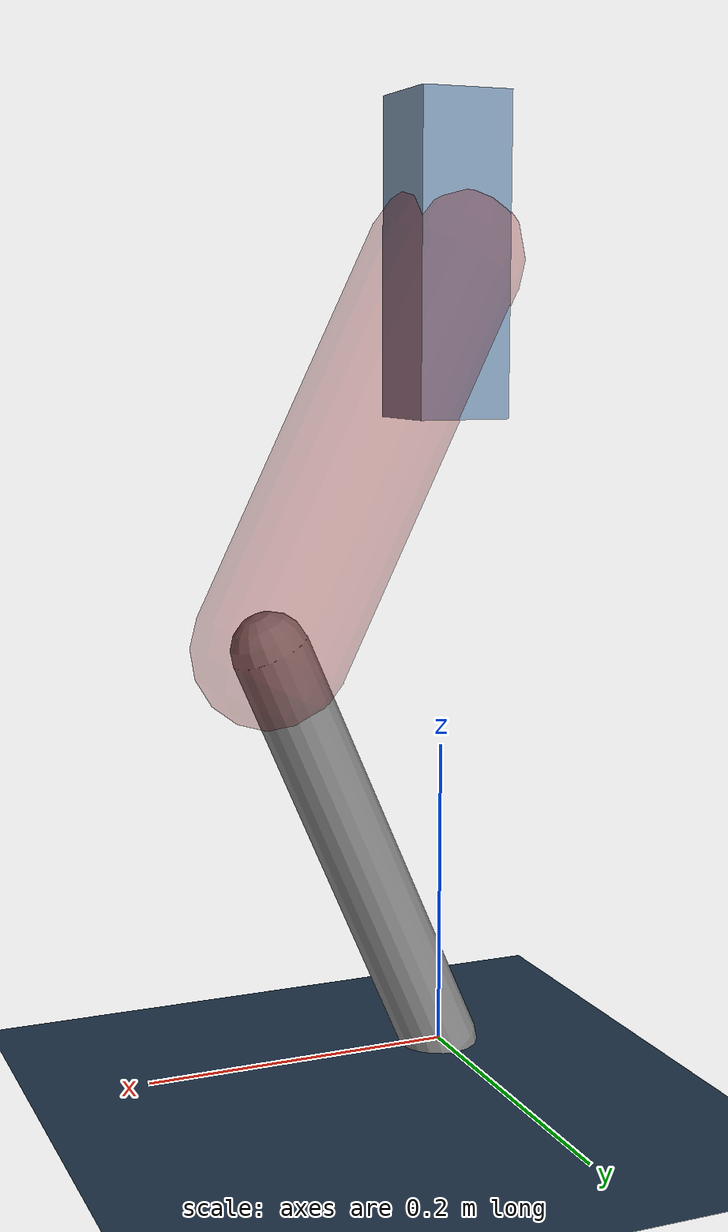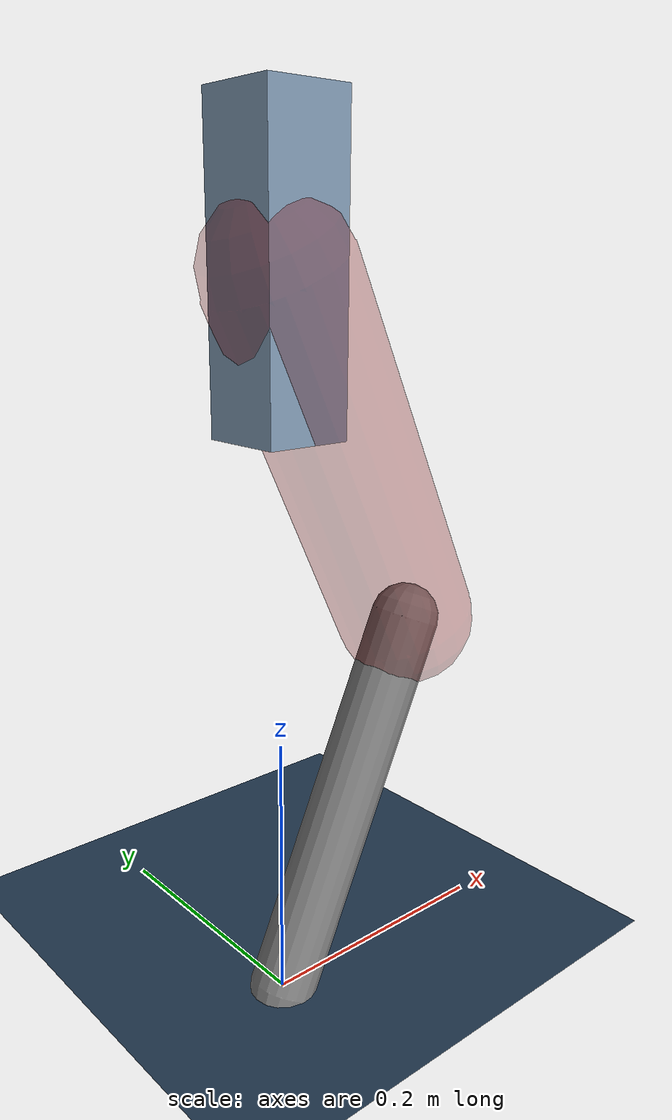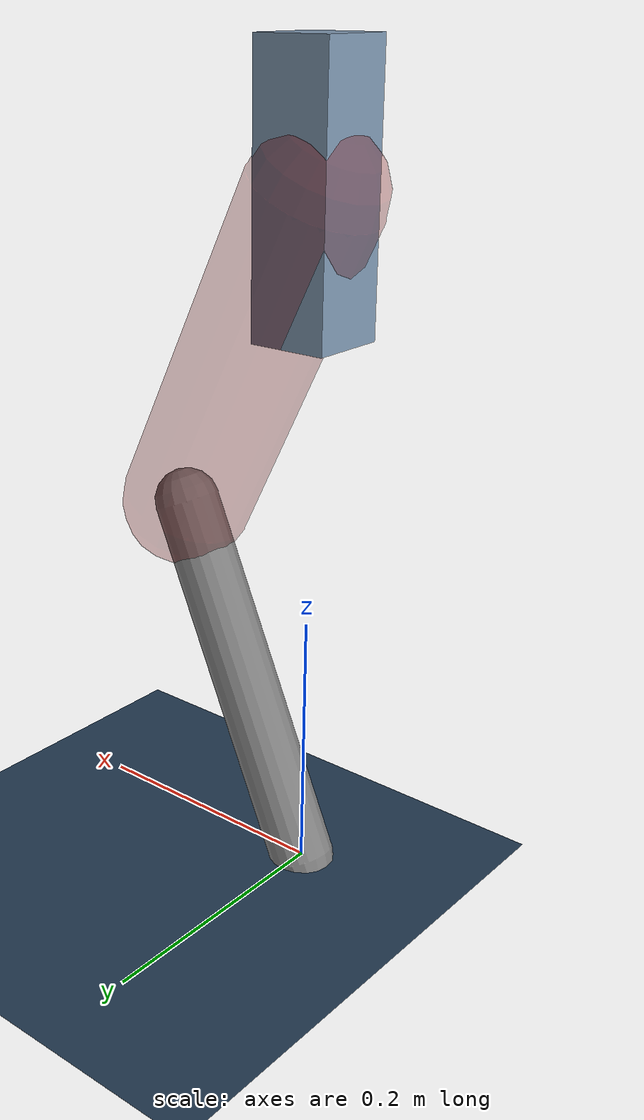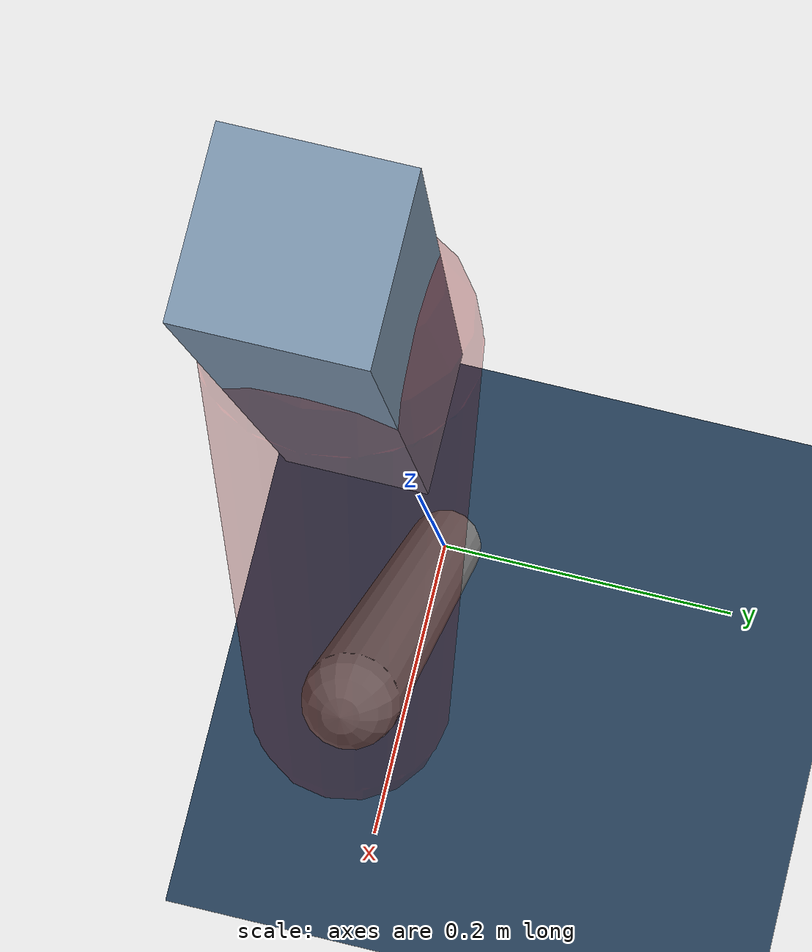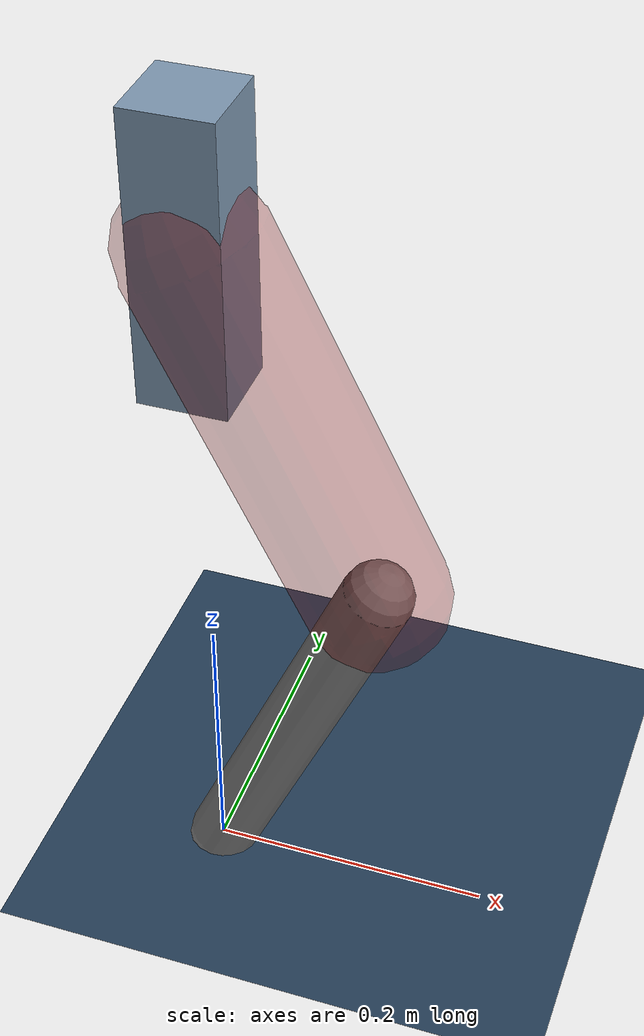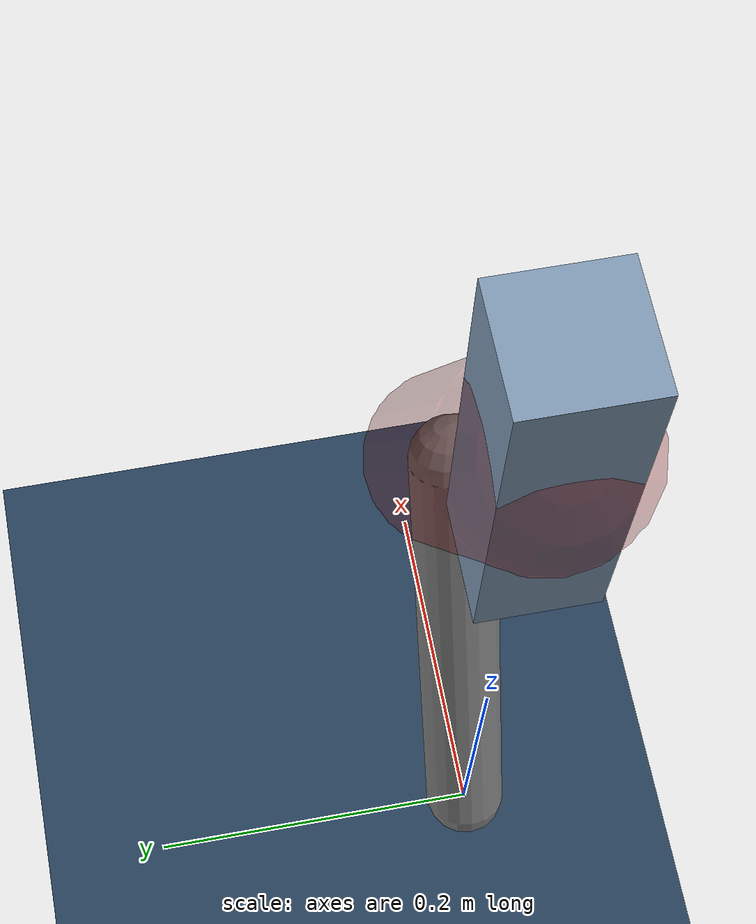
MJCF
<mujoco model="Hopper2D">
	<compiler inertiafromgeom="true" angle="radian" />
	<option timestep="0.001" integrator="implicit" cone="elliptic" solver="Newton" tolerance="1e-10" />

	<default>
		<geom contype="1" conaffinity="1" condim="3" friction="2 0.005 0.0001" solref="0.005 1" />
		<joint limited="true" damping="0.1" />
	</default>

	<asset>
		<texture name="skybox" type="skybox" builtin="gradient" rgb1=".4 .6 .8" rgb2="0 0 0" width="800" height="800" />
		<texture name="grid" type="2d" builtin="checker" rgb1=".1 .2 .3" rgb2=".2 .3 .4" width="300" height="300" mark="edge" markrgb=".2 .3 .4" />
		<material name="ground" texture="grid" texrepeat="1 1" texuniform="true" reflectance="0.1" />
		<material name="leg" rgba="0.5 0.6 0.7 1" />
	</asset>

	<worldbody>

		<geom name="floor" type="plane" size="5 5 0.25" material="ground" />

		<light directional="false" diffuse="0.8 0.8 0.8" specular="0.3 0.3 0.3" pos="0 0 2" dir="0 0 -1" />
		<light mode="targetbodycom" target="base" directional="false" diffuse="0.8 0.8 0.8" specular="0.3 0.3 0.3" pos="0 0 2" dir="0 0 -1" />

		<camera name="fixed" pos="0 -2 1" xyaxes="1 0 0 0 0 1" />
		<camera name="tracking" mode="trackcom" pos="0 -3 1" />

		<body name="root" pos="0 0 0.5124597791454127">
			<joint name="slide_x" type="slide" axis="1 0 0" range="-100 100" />
			<joint name="slide_z" type="slide" axis="0 0 1" range="0 10" />

			<body name="base" pos="0 0 0">
				<geom name="torso" type="box" size="0.03 0.03 0.1" mass="2.908" material="leg" />

				<body name="link1" pos="0 0 0" euler="0 1.1167528835527396 0">
					<joint type="hinge" axis="0 -1 0" pos="0 0 0" name="hinge1" limited="true" range="-3.14 3.14" stiffness="0" damping="0.1" />
					<geom name="thigh" type="capsule" fromto="0 0 0 0.26959599641047816 0 0" size="0.05" rgba="0.5 0 0 0.3" mass="0.9076091903082909" />

					<body name="link2" pos="0.26959599641047816 0 0" euler="0 0.866585207322121 0">
						<joint type="hinge" axis="0 -1 0" pos="0 0 0" name="hinge2" limited="true" range="-3.14 3.14" stiffness="0" damping="0.1" />
						<geom name="shank" type="capsule" fromto="0 0 0 0.2949215145288062 0 0" size="0.025" mass="0.4793293630759256" />

					</body>
				</body>
			</body>
		</body>
	</worldbody>

	<actuator>
		<motor name="torque1" joint="hinge1" ctrlrange="-76.7310347882902 76.7310347882902" ctrllimited="true" gear="1" />
		<motor name="torque2" joint="hinge2" ctrlrange="-176.46063135070685 176.46063135070685" ctrllimited="true" gear="1" />
	</actuator>
</mujoco>
